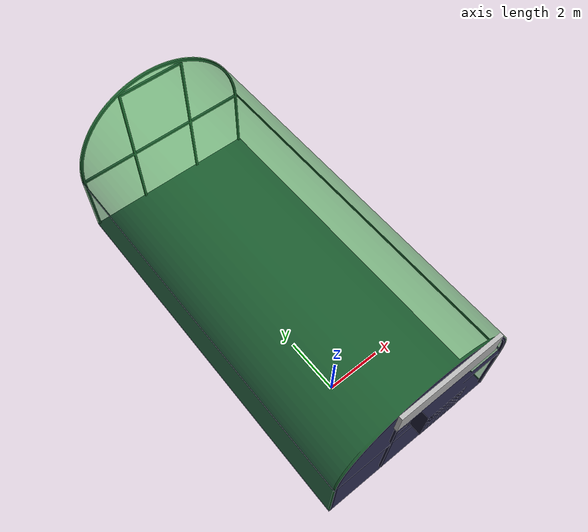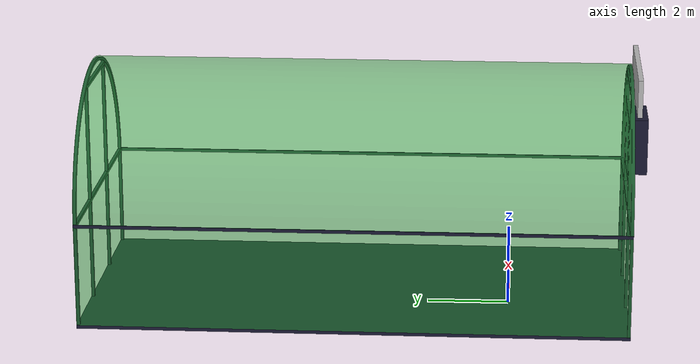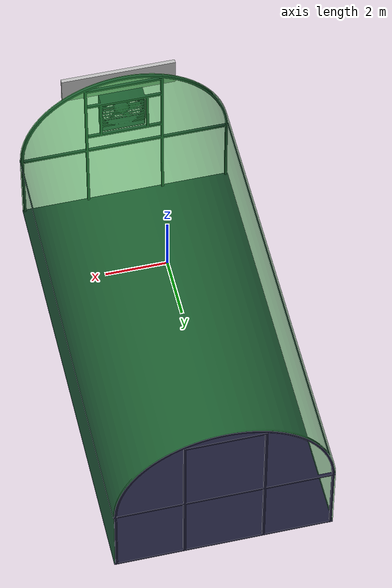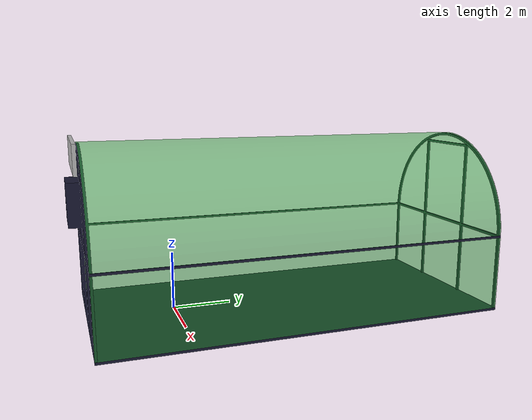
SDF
<sdf version="1.6">
 <world name="default">
  <model name="green_house">
   <static>1</static>
   <link name="link">
    <collision name="collision">
     <geometry>
      <mesh><scale>0.001 0.001 0.001</scale><uri>file://green_house/meshes/greenhouse_eyantra_glass.stl</uri></mesh>
     </geometry>
    </collision>
    <visual name="branch">
     <geometry>
      <mesh><scale>0.001 0.001 0.001</scale><uri>file://green_house/meshes/greenhouse_eyantra_glass.stl</uri></mesh>
     </geometry>
     <material>
      <script><name>Gazebo/GreenTransparent</name><uri>file://media/materials/scripts/gazebo.material</uri></script>
     </material>
    </visual>
   </link>
   <link name="link2">
    <collision name="collision2">
     <geometry>
      <mesh>
       <scale>0.001 0.001 0.001</scale>
       <uri>file://green_house/meshes/greenhouse_eyantra_skeleton.stl</uri>
      </mesh>
     </geometry>
    </collision>
    <visual name="branch2">
     <geometry>
      <mesh>
       <scale>0.001 0.001 0.001</scale>
       <uri>file://green_house/meshes/greenhouse_eyantra_skeleton.stl</uri>
      </mesh>
     </geometry>
     <material>
      <ambient>0.1 0.1 0.1 1</ambient>
      <diffuse>0.1 0.1 0.2 1</diffuse>
      <specular>0 0 0 0</specular>
      <emissive>0 0 0 1</emissive>
     </material>
    </visual>
   </link>
   <link name="link3">
    <pose>9.7 5.5 -0.2 3.14159 0.001593 3.14159</pose>
    <collision name="logo">
     <geometry><mesh><scale>400 400 400</scale><uri>file://green_house/meshes/logo2.dae</uri></mesh></geometry>
    </collision>
    <visual name="logo_c">
     <geometry><mesh><scale>400 400 400</scale><uri>file://green_house/meshes/logo2.dae</uri></mesh></geometry>
    </visual>
   </link>
   <joint name="logo" type="fixed"><child>link3</child><parent>link2</parent></joint>
   <pose>10.523 -2.987 0.1 1.57159 -0.001593 -3.14159</pose>
  </model>
 </world>
</sdf>
